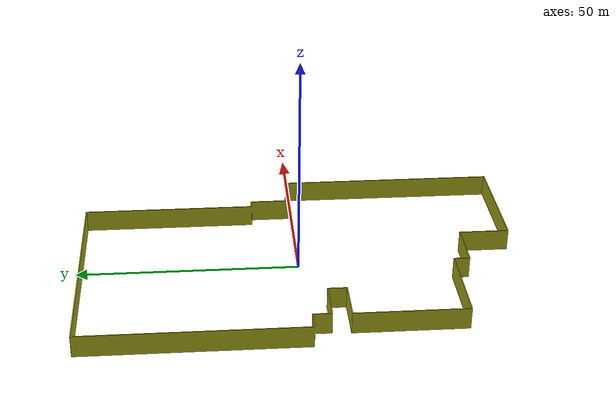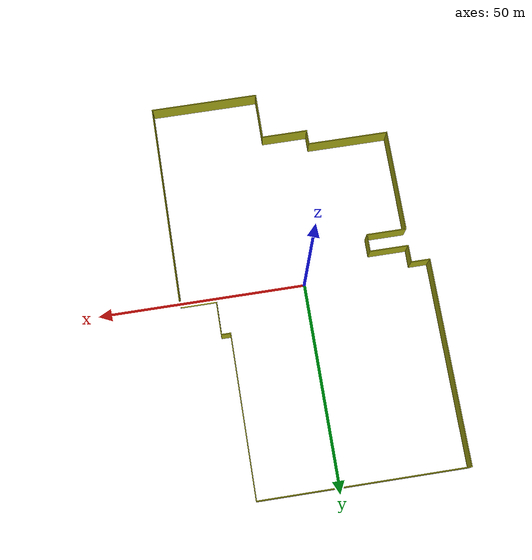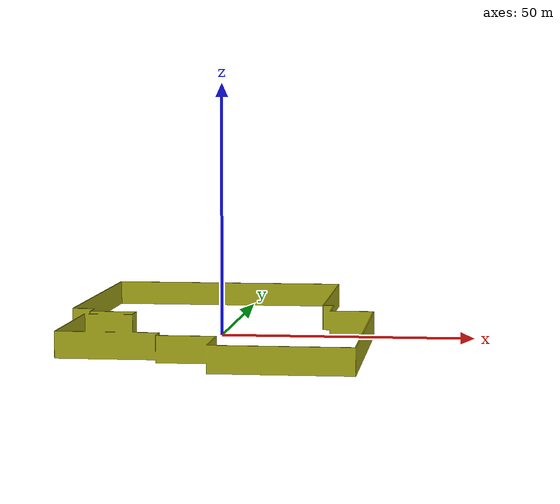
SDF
<?xml version="1.0" ?>
<sdf version="1.6">
  <model name="test_2_walls">
    <pose frame="">0 0 2.5 0 -0 0</pose>
    <static>1</static>
    <self_collide>0</self_collide>
    <allow_auto_disable>0</allow_auto_disable>
    <link name="mesh">
      <kinematic>0</kinematic>
      <gravity>1</gravity>
      <self_collide>0</self_collide>
      <collision name="collision">
        <geometry>
          <mesh>
            <uri>file:///home/agusmazzeo/Documents/UTN/Proyecto/Frontier-Exploration-with-a-prior/Notebooks/files/models/test_2_walls/meshes/OAHHNRRCJG.stl</uri>
            <scale>1 1 1</scale>
          </mesh>
        </geometry>
        <pose frame="">0.885677 -0.448982 -2.5 0 -0 0</pose>
        <max_contacts>20</max_contacts>
      </collision>
      <visual name="visual">
        <geometry>
          <mesh>
            <uri>file:///home/agusmazzeo/Documents/UTN/Proyecto/Frontier-Exploration-with-a-prior/Notebooks/files/models/test_2_walls/meshes/ibyCSFprrt.stl</uri>
            <scale>1 1 1</scale>
          </mesh>
        </geometry>
        <material>
          <ambient>0.635294 0.643137 0.0823529 1</ambient>
          <diffuse>0.6352941176470588 0.6431372549019608 0.08235294117647059 1</diffuse>
        </material>
        <pose frame="">0.885677 -0.448982 -2.5 0 -0 0</pose>
        <cast_shadows>1</cast_shadows>
        <transparency>0.0</transparency>
      </visual>
      <pose frame="">0 0 0 0 -0 0</pose>
    </link>
  </model>
</sdf>
